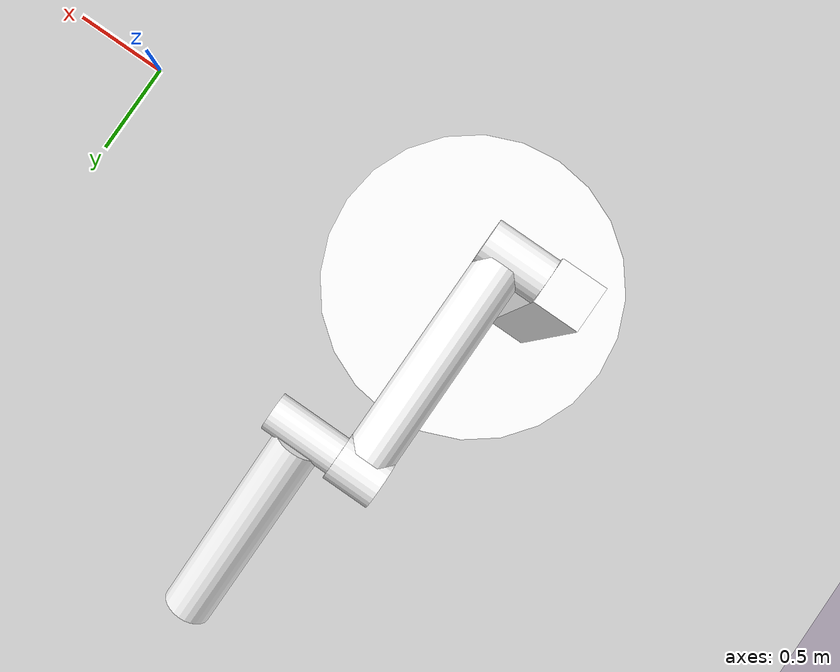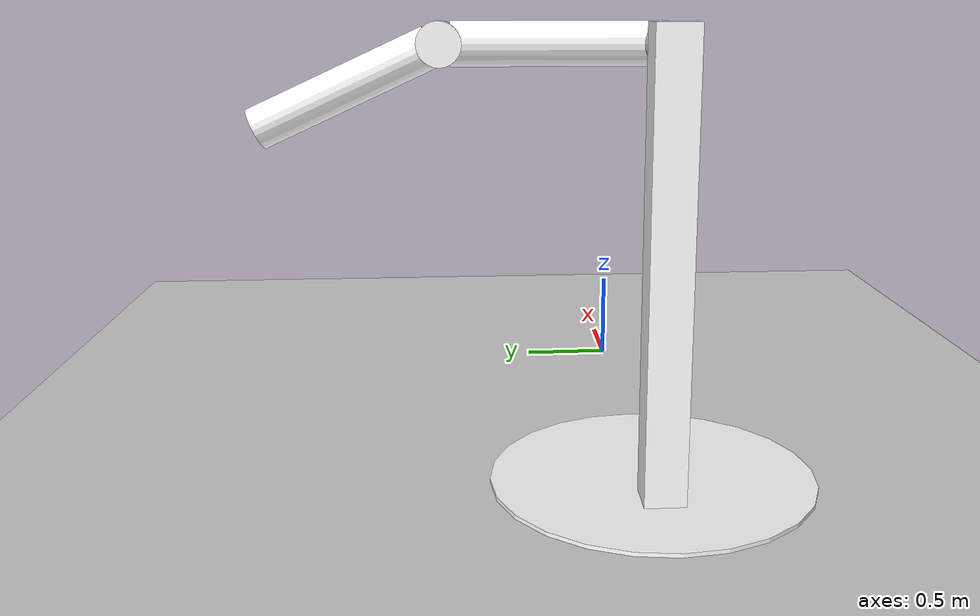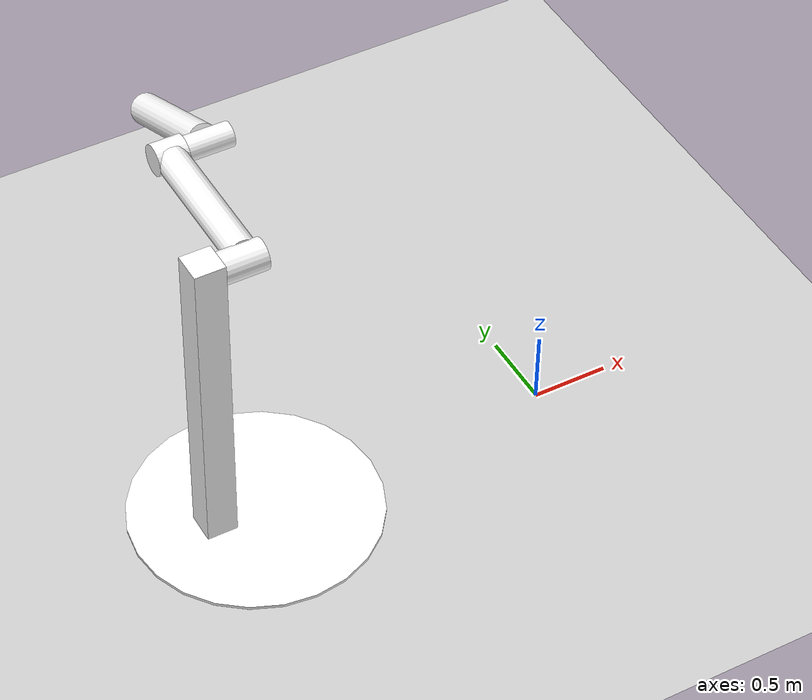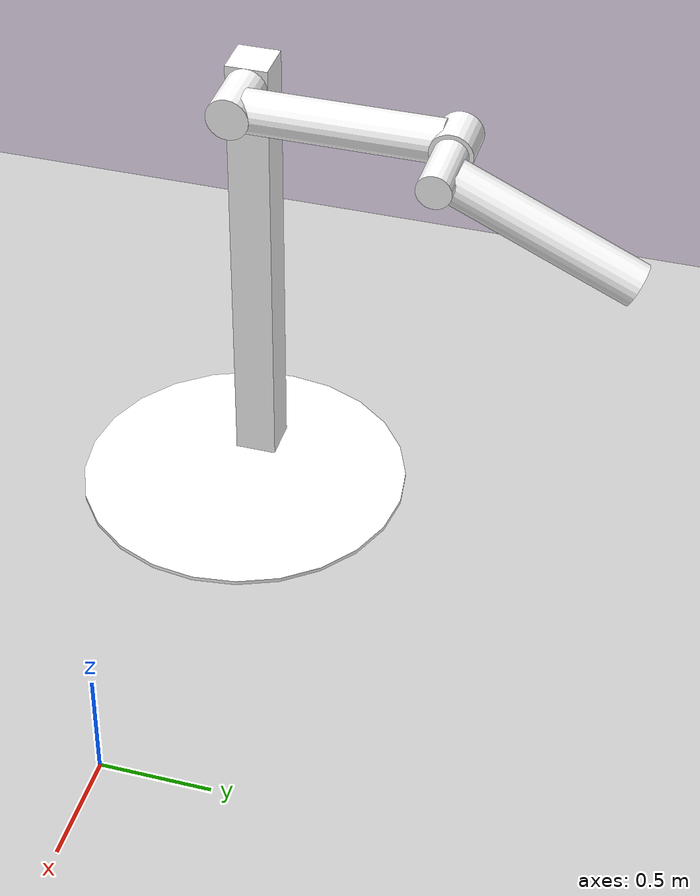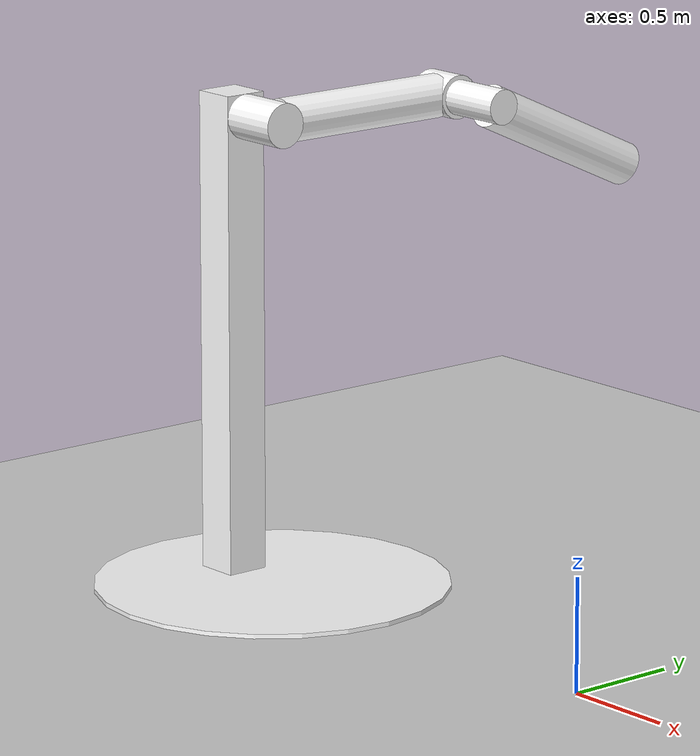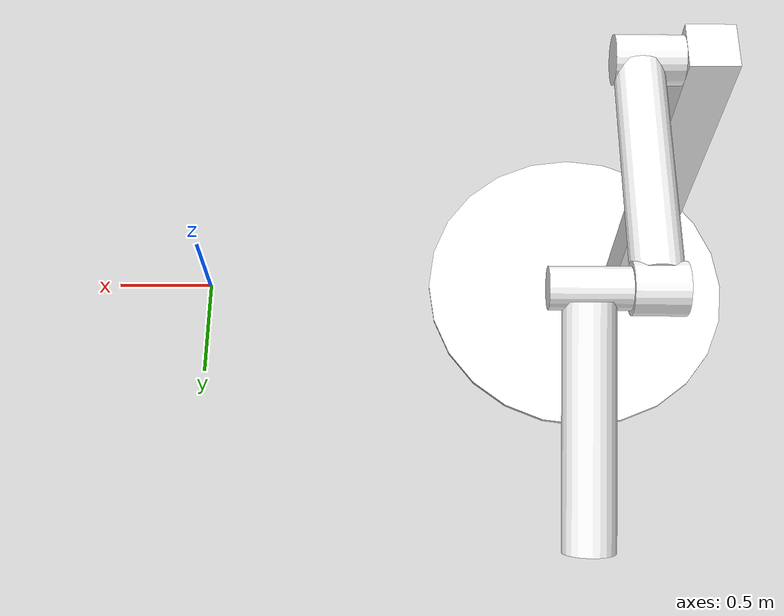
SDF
<?xml version="1.0" ?>
<sdf version="1.4">
    <world name="default">
        <gui>
            <camera name='default_camera'>
                <pose>1.61376 -3.86178 12.7195 0 0.964001 1.12</pose>
                <view_controller>orbit</view_controller>
            </camera>
        </gui>

        <include>
            <uri>model://ground_plane</uri>
            <pose>0 0 0 0 0 0</pose>
        </include>
        <include>
            <uri>model://double_pendulum_with_base</uri>
            <name>pendulum</name>
            <pose>-2.0 0 0 0 0 0</pose>
        </include>
    </world>
</sdf>

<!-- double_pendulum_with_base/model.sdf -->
<sdf version="1.5">
  <model name="double_pendulum_with_base">
    <link name="base">
      <inertial>
        <mass>100</mass>
      </inertial>
      <visual name="vis_plate_on_ground">
        <pose>0 0 0.01 0 0 0</pose>
        <geometry>
          <cylinder>
            <radius>0.8</radius>
            <length>0.02</length>
          </cylinder>
        </geometry>
        <material><diffuse>1 1 1 1</diffuse><specular>0.1 0.1 0.1 1</specular></material>
      </visual>
      <visual name="vis_pole">
        <pose>-0.275 0 1.1 0 0 0</pose>
        <geometry>
          <box>
            <size>0.2 0.2 2.2</size>
          </box>
        </geometry>
        <material><diffuse>1 1 1 1</diffuse><specular>0.1 0.1 0.1 1</specular></material>
      </visual>
      <collision name="col_plate_on_ground">
        <pose>0 0 0.01 0 0 0</pose>
        <geometry>
          <cylinder>
            <radius>0.8</radius>
            <length>0.02</length>
          </cylinder>
        </geometry>
      </collision>
      <collision name="col_pole">
        <pose>-0.275 0 1.1 0 0 0</pose>
        <geometry>
          <box>
            <size>0.2 0.2 2.2</size>
          </box>
        </geometry>
      </collision>
    </link>
    <!-- upper link, length 1, IC -90 degrees -->
    <link name="upper_link">
      <pose>0 0 2.1 -1.5708 0 0</pose>
      <self_collide>0</self_collide>
      <inertial>
        <pose>0 0 0.5 0 0 0</pose>
      </inertial>
      <visual name="vis_upper_joint">
        <pose>-0.05 0 0 0 1.5708 0</pose>
        <geometry>
          <cylinder>
            <radius>0.1</radius>
            <length>0.3</length>
          </cylinder>
        </geometry>
        <material><diffuse>1 1 1 1</diffuse><specular>0.1 0.1 0.1 1</specular></material>
      </visual>
      <visual name="vis_lower_joint">
        <pose>0 0 1.0 0 1.5708 0</pose>
        <geometry>
          <cylinder>
            <radius>0.1</radius>
            <length>0.2</length>
          </cylinder>
        </geometry>
        <material><diffuse>1 1 1 1</diffuse><specular>0.1 0.1 0.1 1</specular></material>
      </visual>
      <visual name="vis_cylinder">
        <pose>0 0 0.5 0 0 0</pose>
        <geometry>
          <cylinder>
            <radius>0.1</radius>
            <length>0.9</length>
          </cylinder>
        </geometry>
        <material><diffuse>1 1 1 1</diffuse><specular>0.1 0.1 0.1 1</specular></material>
      </visual>
      <collision name="col_upper_joint">
        <pose>-0.05 0 0 0 1.5708 0</pose>
        <geometry>
          <cylinder>
            <radius>0.1</radius>
            <length>0.3</length>
          </cylinder>
        </geometry>
      </collision>
      <collision name="col_lower_joint">
        <pose>0 0 1.0 0 1.5708 0</pose>
        <geometry>
          <cylinder>
            <radius>0.1</radius>
            <length>0.2</length>
          </cylinder>
        </geometry>
      </collision>
      <collision name="col_cylinder">
        <pose>0 0 0.5 0 0 0</pose>
        <geometry>
          <cylinder>
            <radius>0.1</radius>
            <length>0.9</length>
          </cylinder>
        </geometry>
      </collision>
    </link>
    <!-- lower link, length 1, IC ~-120 degrees more -->
    <link name="lower_link">
      <pose>0.25 1.0 2.1 -2 0 0</pose>
      <self_collide>0</self_collide>
      <inertial>
        <pose>0 0 0.5 0 0 0</pose>
      </inertial>
      <visual name="vis_lower_joint">
        <pose>0 0 0 0 1.5708 0</pose>
        <geometry>
          <cylinder>
            <radius>0.08</radius>
            <length>0.3</length>
          </cylinder>
        </geometry>
        <material><diffuse>1 1 1 1</diffuse><specular>0.1 0.1 0.1 1</specular></material>
      </visual>
      <visual name="vis_cylinder">
        <pose>0 0 0.5 0 0 0</pose>
        <geometry>
          <cylinder>
            <radius>0.1</radius>
            <length>0.9</length>
          </cylinder>
        </geometry>
        <material><diffuse>1 1 1 1</diffuse><specular>0.1 0.1 0.1 1</specular></material>
      </visual>
      <collision name="col_lower_joint">
        <pose>0 0 0 0 1.5708 0</pose>
        <geometry>
          <cylinder>
            <radius>0.08</radius>
            <length>0.3</length>
          </cylinder>
        </geometry>
      </collision>
      <collision name="col_cylinder">
        <pose>0 0 0.5 0 0 0</pose>
        <geometry>
          <cylinder>
            <radius>0.1</radius>
            <length>0.9</length>
          </cylinder>
        </geometry>
      </collision>
    </link>
    <!-- pin joint for upper link, at origin of upper link -->
    <joint name="upper_joint" type="revolute">
      <parent>base</parent>
      <child>upper_link</child>
      <axis>
        <xyz>1.0 0 0</xyz>
      </axis>
    </joint>
    <!-- pin joint for lower link, at origin of child link -->
    <joint name="lower_joint" type="revolute">
      <parent>upper_link</parent>
      <child>lower_link</child>
      <axis>
        <xyz>1.0 0 0</xyz>
      </axis>
    </joint>
  </model>
</sdf>
